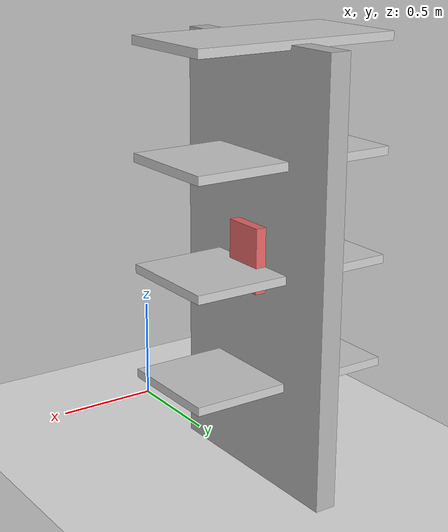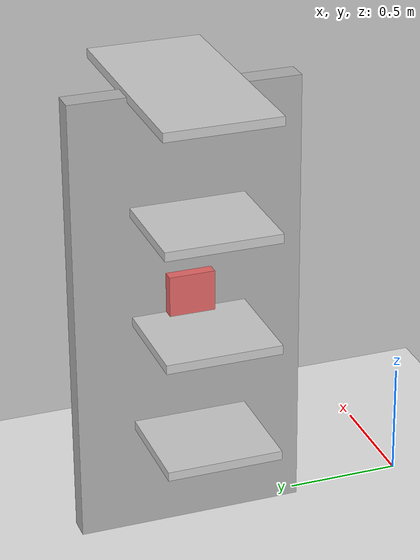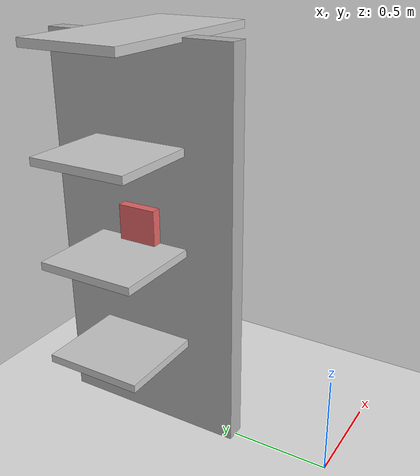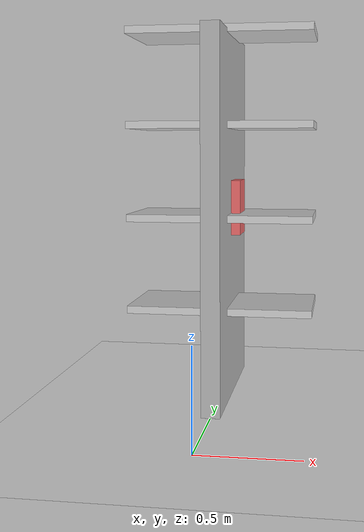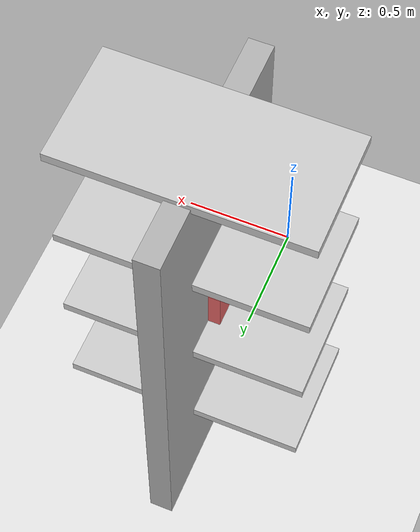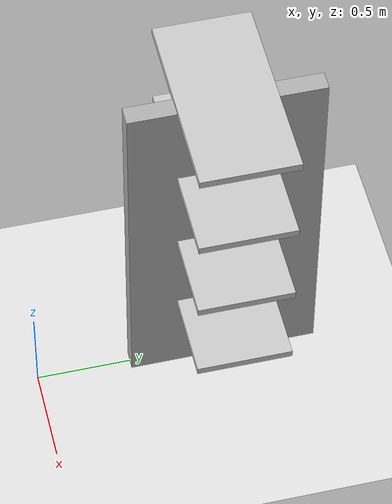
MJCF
<mujoco model="roboshelf_retail_v1">
  <option gravity="0 0 -9.81"/>

  <default>
    <geom condim="3" friction="0.8 0.1 0.1" rgba="0.8 0.8 0.8 1"/>
  </default>

  <asset>
  </asset>

  <worldbody>
    <!-- Padló -->
    <geom name="floor" type="plane" size="5 5 0.1" rgba="0.9 0.9 0.9 1"/>

    <!-- Egy egyszerű polc-test -->
    <body name="shelf_A3" pos="0 1 0">
      <geom name="shelf_A3_column" type="box" size="0.05 0.5 1.0" pos="0 0 1.0" rgba="0.7 0.7 0.7 1"/>

      <geom name="shelf_A3_level1" type="box" size="0.5 0.25 0.02" pos="0 0 0.5" rgba="0.8 0.8 0.8 1"/>
      <geom name="shelf_A3_level2" type="box" size="0.5 0.25 0.02" pos="0 0 1.0" rgba="0.8 0.8 0.8 1"/>
      <geom name="shelf_A3_level3" type="box" size="0.5 0.25 0.02" pos="0 0 1.5" rgba="0.8 0.8 0.8 1"/>
      <geom name="shelf_A3_level4" type="box" size="0.5 0.25 0.02" pos="0 0 2.0" rgba="0.8 0.8 0.8 1"/>
    </body>

    <!-- Egy termékdoboz a polcon -->
    <body name="product_box_1" pos="0 1 1.05">
      <geom name="product_box_1_geom" type="box" size="0.1 0.1 0.15" rgba="0.9 0.4 0.4 1" density="500"/>
    </body>
  </worldbody>
</mujoco>
